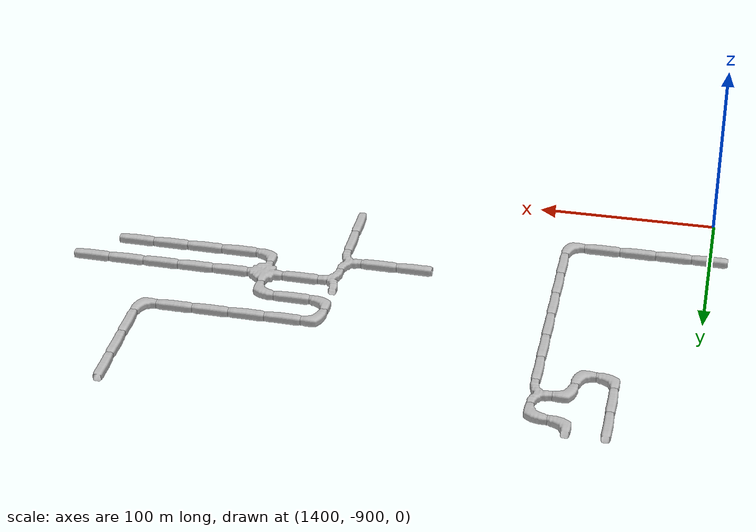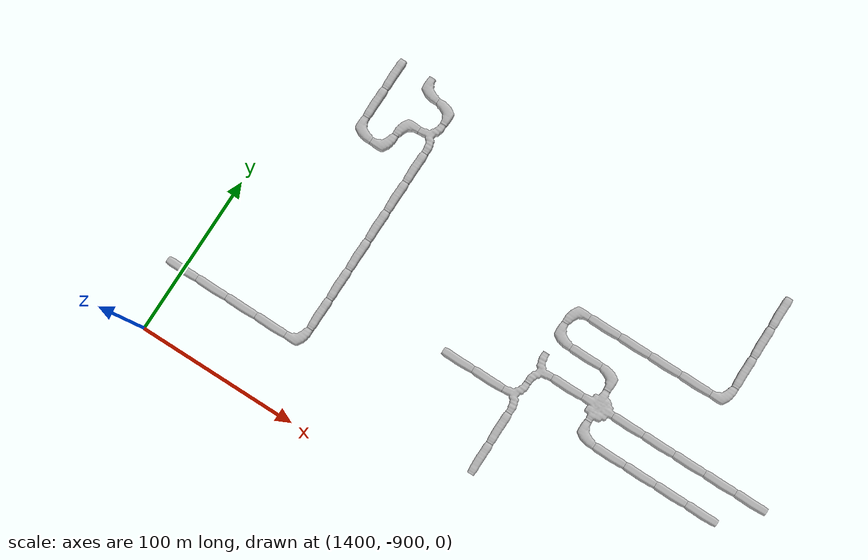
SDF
<sdf version="1.6">
 <world name="cave_16000_16">
  <include>
   <static>true</static>
   <name>cave_85_-35</name>
   <pose>1700 -700 0 0 0 0.0</pose>
   <uri>model://cave_straight_20m</uri>
  </include>
  <include>
   <static>true</static>
   <name>cave_85_-36</name>
   <pose>1700 -720 0 0 0 0.0</pose>
   <uri>model://cave_straight_20m</uri>
  </include>
  <include>
   <static>true</static>
   <name>cave_85_-37</name>
   <pose>1700 -740 0 0 0 0.0</pose>
   <uri>model://cave_straight_20m</uri>
  </include>
  <include>
   <static>true</static>
   <name>cave_85_-38</name>
   <pose>1700 -760 0 0 0 1.5707963267948966</pose>
   <uri>model://cave_L_20m</uri>
  </include>
  <include>
   <static>true</static>
   <name>cave_84_-38</name>
   <pose>1680 -760 0 0 0 1.5707963267948966</pose>
   <uri>model://cave_straight_20m</uri>
  </include>
  <include>
   <static>true</static>
   <name>cave_83_-38</name>
   <pose>1660 -760 0 0 0 1.5707963267948966</pose>
   <uri>model://cave_straight_20m</uri>
  </include>
  <include>
   <static>true</static>
   <name>cave_82_-38</name>
   <pose>1640 -760 0 0 0 1.5707963267948966</pose>
   <uri>model://cave_straight_20m</uri>
  </include>
  <include>
   <static>true</static>
   <name>cave_81_-38</name>
   <pose>1620 -760 0 0 0 1.5707963267948966</pose>
   <uri>model://cave_straight_20m</uri>
  </include>
  <include>
   <static>true</static>
   <name>cave_80_-38</name>
   <pose>1600 -760 0 0 0 -1.5707963267948966</pose>
   <uri>model://cave_L_20m</uri>
  </include>
  <include>
   <static>true</static>
   <name>cave_80_-39</name>
   <pose>1600 -780 0 0 0 0.0</pose>
   <uri>model://cave_L_20m</uri>
  </include>
  <include>
   <static>true</static>
   <name>cave_81_-39</name>
   <pose>1620 -780 0 0 0 1.5707963267948966</pose>
   <uri>model://cave_straight_20m</uri>
  </include>
  <include>
   <static>true</static>
   <name>cave_82_-39</name>
   <pose>1640 -780 0 0 0 3.141592653589793</pose>
   <uri>model://cave_L_20m</uri>
  </include>
  <include>
   <static>true</static>
   <name>cave_82_-40</name>
   <pose>1640 -800 0 0 0 -1.5707963267948966</pose>
   <uri>model://cave_4way_20m</uri>
  </include>
  <include>
   <static>true</static>
   <name>cave_83_-40</name>
   <pose>1660 -800 0 0 0 1.5707963267948966</pose>
   <uri>model://cave_straight_20m</uri>
  </include>
  <include>
   <static>true</static>
   <name>cave_84_-40</name>
   <pose>1680 -800 0 0 0 1.5707963267948966</pose>
   <uri>model://cave_straight_20m</uri>
  </include>
  <include>
   <static>true</static>
   <name>cave_85_-40</name>
   <pose>1700 -800 0 0 0 1.5707963267948966</pose>
   <uri>model://cave_straight_20m</uri>
  </include>
  <include>
   <static>true</static>
   <name>cave_86_-40</name>
   <pose>1720 -800 0 0 0 1.5707963267948966</pose>
   <uri>model://cave_straight_20m</uri>
  </include>
  <include>
   <static>true</static>
   <name>cave_87_-40</name>
   <pose>1740 -800 0 0 0 1.5707963267948966</pose>
   <uri>model://cave_straight_20m</uri>
  </include>
  <include>
   <static>true</static>
   <name>cave_82_-41</name>
   <pose>1640 -820 0 0 0 0.0</pose>
   <uri>model://cave_L_20m</uri>
  </include>
  <include>
   <static>true</static>
   <name>cave_83_-41</name>
   <pose>1660 -820 0 0 0 1.5707963267948966</pose>
   <uri>model://cave_straight_20m</uri>
  </include>
  <include>
   <static>true</static>
   <name>cave_84_-41</name>
   <pose>1680 -820 0 0 0 1.5707963267948966</pose>
   <uri>model://cave_straight_20m</uri>
  </include>
  <include>
   <static>true</static>
   <name>cave_85_-41</name>
   <pose>1700 -820 0 0 0 1.5707963267948966</pose>
   <uri>model://cave_straight_20m</uri>
  </include>
  <include>
   <static>true</static>
   <name>cave_86_-41</name>
   <pose>1720 -820 0 0 0 1.5707963267948966</pose>
   <uri>model://cave_straight_20m</uri>
  </include>
  <include>
   <static>true</static>
   <name>cave_81_-40</name>
   <pose>1620 -800 0 0 0 1.5707963267948966</pose>
   <uri>model://cave_straight_20m</uri>
  </include>
  <include>
   <static>true</static>
   <name>cave_80_-40</name>
   <pose>1600 -800 0 0 0 -1.5707963267948966</pose>
   <uri>model://cave_3way_20m</uri>
  </include>
  <include>
   <static>true</static>
   <name>cave_80_-41</name>
   <pose>1600 -820 0 0 0 1.5707963267948966</pose>
   <uri>model://cave_3way_20m</uri>
  </include>
  <include>
   <static>true</static>
   <name>cave_80_-42</name>
   <pose>1600 -840 0 0 0 0.0</pose>
   <uri>model://cave_straight_20m</uri>
  </include>
  <include>
   <static>true</static>
   <name>cave_80_-43</name>
   <pose>1600 -860 0 0 0 0.0</pose>
   <uri>model://cave_straight_20m</uri>
  </include>
  <include>
   <static>true</static>
   <name>cave_79_-41</name>
   <pose>1580 -820 0 0 0 1.5707963267948966</pose>
   <uri>model://cave_straight_20m</uri>
  </include>
  <include>
   <static>true</static>
   <name>cave_78_-41</name>
   <pose>1560 -820 0 0 0 1.5707963267948966</pose>
   <uri>model://cave_straight_20m</uri>
  </include>
  <include>
   <static>true</static>
   <name>cave_72_-35</name>
   <pose>1440 -700 0 0 0 0.0</pose>
   <uri>model://cave_straight_20m</uri>
  </include>
  <include>
   <static>true</static>
   <name>cave_72_-36</name>
   <pose>1440 -720 0 0 0 0.0</pose>
   <uri>model://cave_straight_20m</uri>
  </include>
  <include>
   <static>true</static>
   <name>cave_72_-37</name>
   <pose>1440 -740 0 0 0 0.0</pose>
   <uri>model://cave_L_20m</uri>
  </include>
  <include>
   <static>true</static>
   <name>cave_73_-37</name>
   <pose>1460 -740 0 0 0 1.5707963267948966</pose>
   <uri>model://cave_L_20m</uri>
  </include>
  <include>
   <static>true</static>
   <name>cave_73_-36</name>
   <pose>1460 -720 0 0 0 -1.5707963267948966</pose>
   <uri>model://cave_L_20m</uri>
  </include>
  <include>
   <static>true</static>
   <name>cave_74_-36</name>
   <pose>1480 -720 0 0 0 1.5707963267948966</pose>
   <uri>model://cave_3way_20m</uri>
  </include>
  <include>
   <static>true</static>
   <name>cave_74_-37</name>
   <pose>1480 -740 0 0 0 0.0</pose>
   <uri>model://cave_straight_20m</uri>
  </include>
  <include>
   <static>true</static>
   <name>cave_74_-38</name>
   <pose>1480 -760 0 0 0 0.0</pose>
   <uri>model://cave_straight_20m</uri>
  </include>
  <include>
   <static>true</static>
   <name>cave_74_-39</name>
   <pose>1480 -780 0 0 0 0.0</pose>
   <uri>model://cave_straight_20m</uri>
  </include>
  <include>
   <static>true</static>
   <name>cave_74_-40</name>
   <pose>1480 -800 0 0 0 0.0</pose>
   <uri>model://cave_straight_20m</uri>
  </include>
  <include>
   <static>true</static>
   <name>cave_74_-41</name>
   <pose>1480 -820 0 0 0 0.0</pose>
   <uri>model://cave_straight_20m</uri>
  </include>
  <include>
   <static>true</static>
   <name>cave_74_-42</name>
   <pose>1480 -840 0 0 0 0.0</pose>
   <uri>model://cave_straight_20m</uri>
  </include>
  <include>
   <static>true</static>
   <name>cave_74_-43</name>
   <pose>1480 -860 0 0 0 1.5707963267948966</pose>
   <uri>model://cave_L_20m</uri>
  </include>
  <include>
   <static>true</static>
   <name>cave_73_-43</name>
   <pose>1460 -860 0 0 0 1.5707963267948966</pose>
   <uri>model://cave_straight_20m</uri>
  </include>
  <include>
   <static>true</static>
   <name>cave_72_-43</name>
   <pose>1440 -860 0 0 0 1.5707963267948966</pose>
   <uri>model://cave_straight_20m</uri>
  </include>
  <include>
   <static>true</static>
   <name>cave_71_-43</name>
   <pose>1420 -860 0 0 0 1.5707963267948966</pose>
   <uri>model://cave_straight_20m</uri>
  </include>
  <include>
   <static>true</static>
   <name>cave_70_-43</name>
   <pose>1400 -860 0 0 0 1.5707963267948966</pose>
   <uri>model://cave_straight_20m</uri>
  </include>
  <include>
   <static>true</static>
   <name>cave_74_-35</name>
   <pose>1480 -700 0 0 0 3.141592653589793</pose>
   <uri>model://cave_L_20m</uri>
  </include>
  <include>
   <static>true</static>
   <name>cave_73_-35</name>
   <pose>1460 -700 0 0 0 0.0</pose>
   <uri>model://cave_L_20m</uri>
  </include>
 </world>
</sdf>
